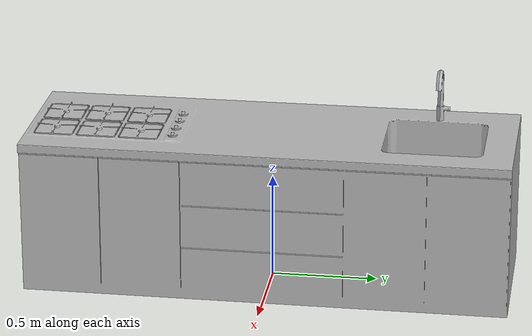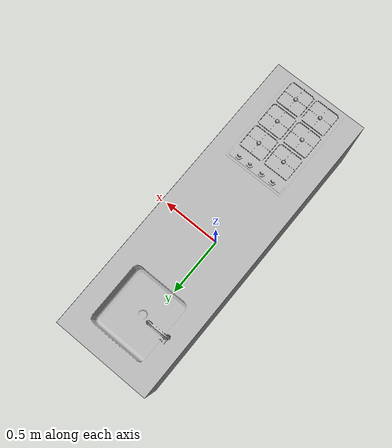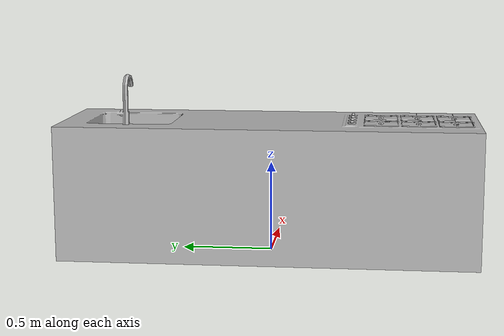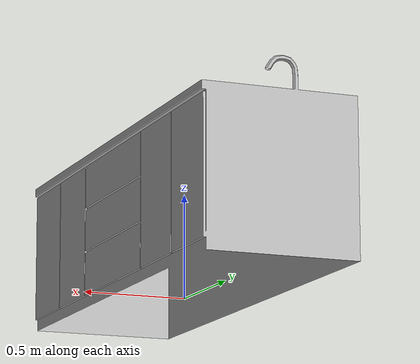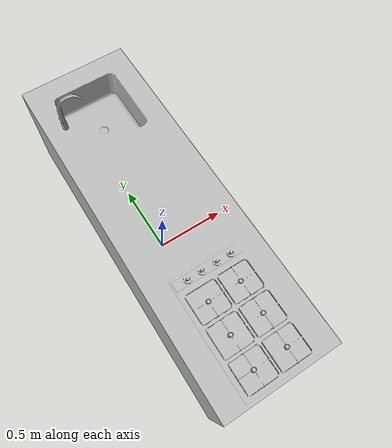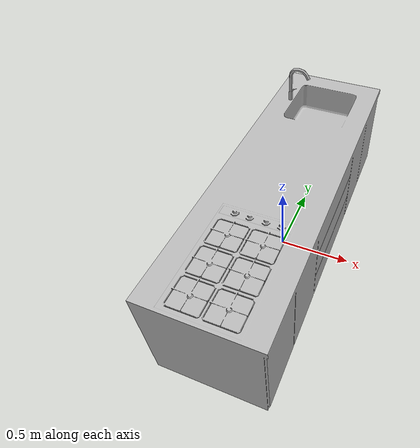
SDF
<?xml version="1.0" ?>
<sdf version="1.5">
  <model name="KitchenCountertop">
    <link name="link">
      <pose>0 0 0 0 0 0</pose>

        <visual name="visual">
          <geometry>
            <mesh><uri>model://KitchenCountertop/meshes/KitchenCountertop.obj</uri></mesh>
          </geometry>
        </visual>

        <collision name="collision">
          <geometry>
            <mesh><uri>model://KitchenCountertop/meshes/KitchenCountertop.obj</uri></mesh>
          </geometry>
        </collision>

    </link>
  </model>
</sdf>
